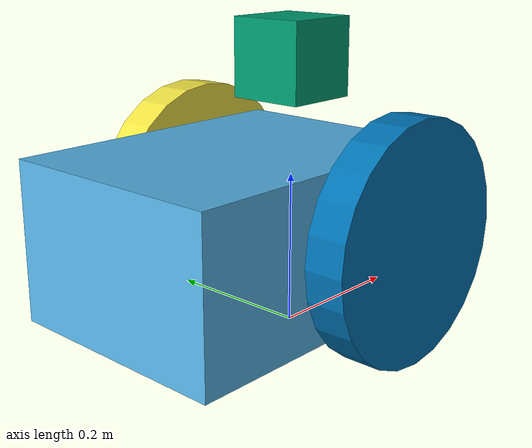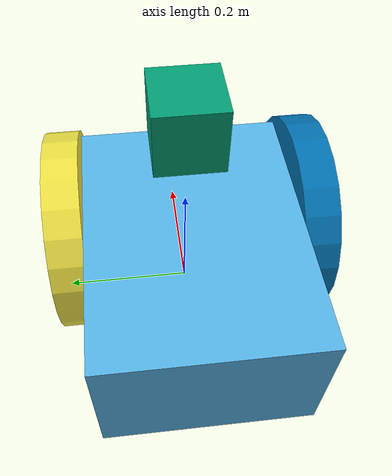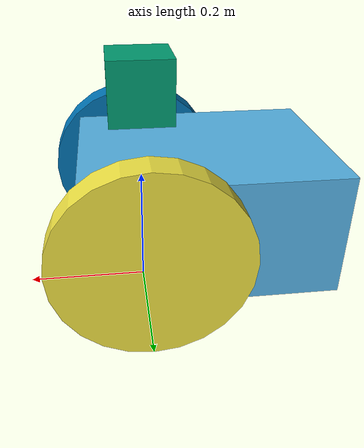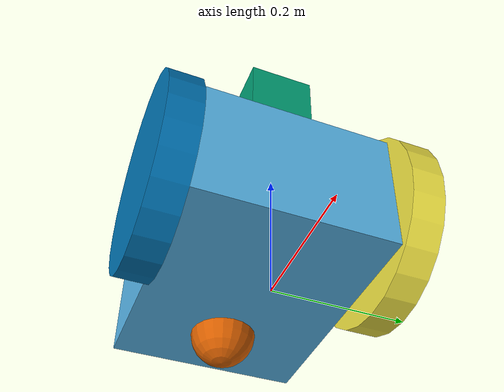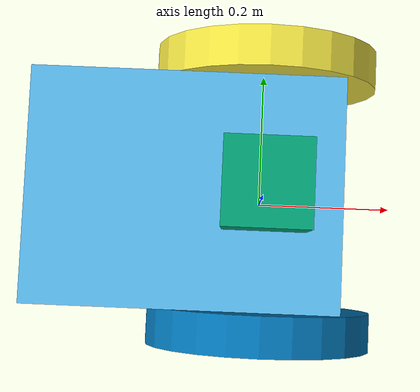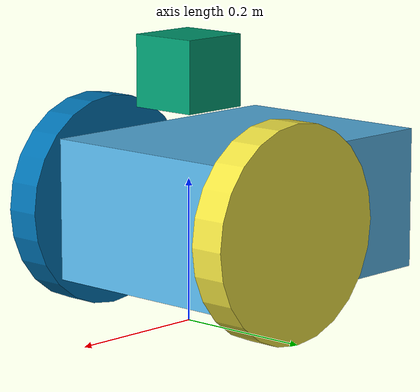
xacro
<?xml version="1.0" encoding="UTF-8"?>
<robot xmlns:xacro="http://www.ros.org/wiki/xacro" name="robot">
  <xacro:property name="PI" value="3.1415926535897931"/>

  <!-- import gazebo reference -->
  <xacro:include filename="$(find line_rot_slam)/xacro/gazebo/robot.gazebo"/>

  <!-- base footprint -->
  <link name="base_footprint"/>

  <!-- base link -->
  <joint name="base_joint" type="fixed">
    <origin xyz="-0.1 0.0 0.15" rpy="0 0 0"/>
    <parent link="base_footprint"/>
    <child link="base_link"/>
  </joint>
  <link name="base_link">
    <visual>
      <origin xyz="0.0 0.0 0.0" rpy="0.0 0.0 0.0"/>
      <geometry>
        <box size="0.4 0.3 0.2"/>
      </geometry>
    </visual>
    <collision>
      <origin xyz="0.0 0.0 0.0" rpy="0.0 0.0 0.0"/>
      <geometry>
        <box size="0.4 0.2 0.2"/>
      </geometry>
    </collision>
    <inertial>
      <origin xyz="0.0 0.0 0.0" rpy="0.0 0.0 0.0"/>
      <mass value="5.0"/>
      <inertia ixx="0.01667" ixy="0.0" ixz="0.0" iyy="0.03333" iyz="0.0" izz="0.03333"/>
    </inertial>
  </link>

  <!-- velodyne -->
  <joint name="velodyne_joint" type="fixed">
    <origin xyz="0.1 0.0 0.2" rpy="0 0 0"/>
    <parent link="base_link"/>
    <child link="velodyne_link"/>
  </joint>
  <link name="velodyne_link">
    <visual>
      <origin xyz="0 0 0" rpy="0 0 0"/>
      <geometry>
        <box size="0.1 0.1 0.1"/>
      </geometry>
    </visual>
    <collision>
      <origin xyz="0 0 0" rpy="0 0 0"/>
      <geometry>
        <box size="0.1 0.1 0.1"/>
      </geometry>
    </collision>
    <inertial>
      <mass value="1.0"/>
      <origin xyz="0 0 0" rpy="0 0 0"/>
      <inertia ixx="0.00167" ixy="0.0" ixz="0.0" iyy="0.00167" iyz="0.0" izz="0.00167"/>
    </inertial>
  </link>

  <!-- left wheel -->
  <joint type="revolute" name="left_wheel_joint">
    <origin xyz="0.0 0.175 0.15" rpy="0.0 ${PI/2} ${PI/2}"/>
    <parent link="base_footprint"/>
    <child link="left_wheel_link"/>
    <axis xyz="0 0 1"/>
    <limit effort="100" velocity="100" lower="-5000" upper="5000"/>
  </joint>
  <link name="left_wheel_link">
    <visual name="visual">
      <origin xyz="0.0 0.0 0.0" rpy="0.0 0.0 0.0"/>
      <geometry>
        <cylinder length="0.05" radius="0.15"/>
      </geometry>
    </visual>
    <collision name="collision">
      <origin xyz="0.0 0.0 0.0" rpy="0.0 0.0 0.0"/>
      <geometry>
        <cylinder length="0.05" radius="0.15"/>
      </geometry>
    </collision>
    <inertial>
      <origin xyz="0.0 0.0 0.0" rpy="0.0 0.0 0.0"/>
      <mass value="1.0"/>
      <inertia ixx="0.00729" ixy="0.0" ixz="0.0" iyy="0.00729" iyz="0.0" izz="0.01125"/>
    </inertial>
  </link>

  <!-- right wheel -->
  <joint type="revolute" name="right_wheel_joint">
    <origin xyz="0.0 -0.175 0.15" rpy="0.0 ${PI/2} ${PI/2}"/>
    <parent link="base_footprint"/>
    <child link="right_wheel_link"/>
    <axis xyz="0 0 1"/>
    <limit effort="100" velocity="100" lower="-5000" upper="5000"/>
  </joint>
  <link name="right_wheel_link">
    <visual name="visual">
      <origin xyz="0.0 0.0 0.0" rpy="0.0 0.0 0.0"/>
      <geometry>
        <cylinder length="0.05" radius="0.15"/>
      </geometry>
    </visual>
    <collision name="collision">
      <origin xyz="0.0 0.0 0.0" rpy="0.0 0.0 0.0"/>
      <geometry>
        <cylinder length="0.05" radius="0.15"/>
      </geometry>
    </collision>
    <inertial>
      <origin xyz="0.0 0.0 0.0" rpy="0.0 0.0 0.0"/>
      <mass value="1.0"/>
      <inertia ixx="0.00729" ixy="0.0" ixz="0.0" iyy="0.00729" iyz="0.0" izz="0.01125"/>
    </inertial>
  </link>

  <!-- caster -->
  <joint name="caster_joint" type="fixed">
    <origin xyz="-0.1 0.0 -0.1" rpy="0.0 0.0 0.0"/>
    <parent link="base_link"/>
    <child link="caster_link"/>
  </joint>
  <link name="caster_link">
    <visual>
      <origin xyz="0.0 0.0 0.0" rpy="0.0 0.0 0.0"/>
      <geometry>
        <sphere radius="0.05"/>
      </geometry>
    </visual>
    <collision>
      <origin xyz="0.0 0.0 0.0" rpy="0.0 0.0 0.0"/>
      <geometry>
        <sphere radius="0.05"/>
      </geometry>
    </collision>
    <inertial>
      <origin xyz="0.0 0.0 0.0" rpy="0.0 0.0 0.0"/>
      <mass value="1.0"/>
      <inertia ixx="0.001" ixy="0.0" ixz="0.0" iyy="0.001" iyz="0.0" izz="0.001"/>
    </inertial>
  </link>
</robot>
